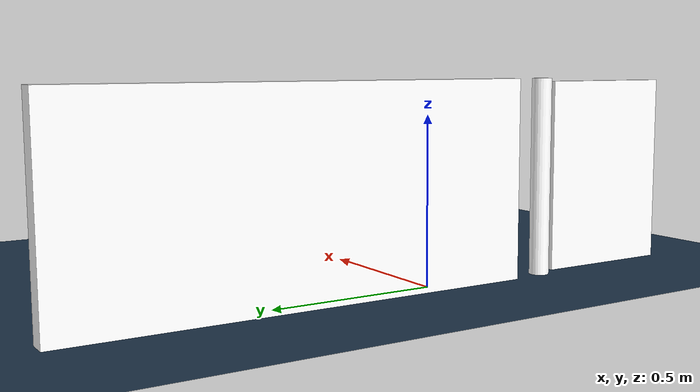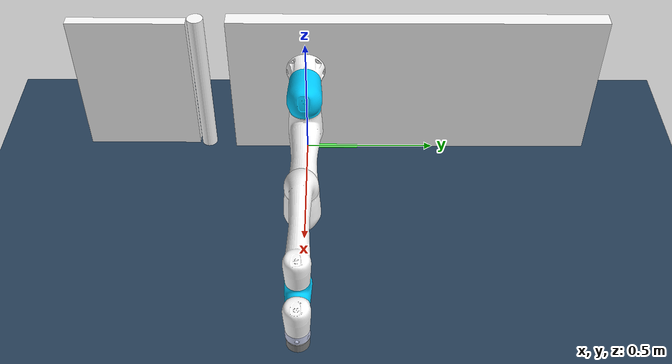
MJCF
<!--无约束门，只能关-->
<mujoco model="jk5">
    <compiler angle="radian" meshdir="../meshes/" coordinate="local"/>
    <size njmax="5000" nconmax="1000"/>
    <option timestep="2e-3" noslip_iterations="20">
        <flag contact="enable" warmstart="disable"/>
    </option>
    <visual>
        <map force="1" torque="10000"/>
        <rgba contactforce="1 0 0 1" contacttorque="0 1 0 1" contactfriction="0 0 1 1"/>
    </visual>
    <asset>
        <material name="common_mat" specular="0" shininess="0.5" reflectance="0" rgba="0.93 0.93 0.93 1"/>
        <material name='floor_mat' texture="floor_tex" shininess="0.8" texrepeat="10 10" specular="0.7"
                  reflectance="0.5"/>
        <material name="MatMetal" specular="1" shininess="0.3" rgba="0.9 0.9 0.9 1"/>
        <material name="MatDarkWood" texrepeat="3 3" specular="0.4" shininess="0.1"/>
        <material name="MatLightWood" texrepeat="3 3" specular="0.4" shininess="0.1"/>
        <texture type="skybox" builtin="gradient" rgb1="1 1 1" rgb2="1 1 1" width="512" height="512"/>
        <texture name="floor_tex" type="2d" builtin="checker" rgb1=".2 .3 .4" rgb2=".1 .2 .3" width="100" height="100"/>
        <hfield name="sin_floor" file="shape.png" nrow="0" ncol="0" size="0.25 0.2 0.02 0.01"/>
        <mesh name="base_link" file="base_link.STL"/>
        <mesh name="link1" file="link1.STL"/>
        <mesh name="link2" file="link2.STL"/>
        <mesh name="link3" file="link3.STL"/>
        <mesh name="link4" file="link4.STL"/>
        <mesh name="link5" file="link5.STL"/>
        <mesh name="link6" file="link6.STL"/>
    </asset>
    <worldbody>
        <light name="light" mode="targetbody" target="link1" directional="true" pos="1 1 3"/>
        <geom name='floor' material="floor_mat" pos='0 0 0' size='2.5 2.5 0.1' type='plane'/>
        <geom name="wall" material="MatLightWood" pos="-0.03 0.41 0.3" size=" 0.03 0.7 0.3" type="box"/>
        <!--0.3885用于平齐门把手,quat为 0 0 1,1 0 0, 0 1 0-->
        <body name="jk5" pos="0 0 0.3885" quat="0.5 0.5 0.5 0.5">
            <geom type="mesh" contype="0" conaffinity="0" group="1" rgba="1 1 1 1" mesh="base_link"/>
            <body name="link1" pos="0 0 0.069">
                <inertial pos="-3.8005e-05 -0.0024889 0.054452" quat="0.696512 0.0244353 -0.0262529 0.716648"
                          mass="4.27" diaginertia="0.0214324 0.0213196 0.00795099"/>
                <joint name="joint1" pos="0 0 0" axis="0 0 1" limited="true" range="-3.14 3.14"/>
                <geom type="mesh" contype="0" conaffinity="0" group="1" rgba="0 0.8 1 1" mesh="link1"/>
                <body name="link2" pos="0 0 0.073" quat="0.7071067811865475 0.7071067811865475 0 0">
                    <inertial pos="0 0.21252 0.12053" quat="0.414451 0.57284 0.573072 0.414334" mass="10.1"
                              diaginertia="1.01715 0.953511 0.0834946"/>
                    <joint name="joint2" pos="0 0 0" axis="0 0 1" limited="true" range="-3.14 3.14"/>
                    <geom type="mesh" contype="0" conaffinity="0" group="1" rgba="1 1 1 1" mesh="link2"/>
                    <body name="link3" pos="0 0.425 0" quat="0.7071067811865475 0 0 0.7071067811865475">
                        <inertial pos="0.27205 1.9634e-05 0.023591" quat="0.482588 0.516912 0.516005 0.483374"
                                  mass="2.61" diaginertia="0.262358 0.261811 0.0036704"/>
                        <joint name="joint3" pos="0 0 0" axis="0 0 1" limited="true" range="-3.14 3.14"/>
                        <geom type="mesh" contype="0" conaffinity="0" group="1" rgba="1 1 1 1" mesh="link3"/>
                        <body name="link4" pos="0.395 0 0">
                            <inertial pos="3.0707e-05 -0.015152 0.11185"
                                      quat="0.997531 0.0701668 0.000322345 -0.00295604" mass="1.45"
                                      diaginertia="0.0201018 0.0196889 0.00158379"/>
                            <joint name="joint4" pos="0 0 0" axis="0 0 1" limited="true" range="-3.14 3.14"/>
                            <geom type="mesh" contype="0" conaffinity="0" group="1" rgba="0 0.8 1 1" mesh="link4"/>
                            <body name="link5" pos="0 0 0.1135" quat="0.5 -0.5 0.5 -0.5">
                                <inertial pos="-3.0707e-05 0.015152 0.099848"
                                          quat="0.704002 -0.0654372 0.0666836 0.704026" mass="1.45"
                                          diaginertia="0.0057004 0.0057004 0.0057004"/>
                                <joint name="joint5" pos="0 0 0" axis="0 0 1" limited="true" range="-3.14 3.14"/>
                                <geom type="mesh" contype="0" conaffinity="0" group="1" rgba="1 1 1 1" mesh="link5"/>
                                <body name="link6" pos="0 0 0.1015" quat="0.7071067811865475 0.7071067811865475 0 0">
                                    <inertial pos="0 0.00058691 0.072051" quat="0.999992 -0.00407703 0 0" mass="0.21"
                                              diaginertia="0.00128044 0.00120857 0.000194485"/>
                                    <joint name="joint6" pos="0 0 0" axis="0 0 1" limited="true" range="-3.14 3.14"/>
                                    <geom type="mesh" contype="0" conaffinity="0" group="1"
                                          rgba="0.79216 0.81961 0.93333 1" mesh="link6"/>
                                    <!--stick与tip为末端执行器，长度为0.063,因此tip有一个0.063,stick有两个0.0315-->
                                    <body name="ee_link" pos="0 0 0.094">
                                        <inertial pos="0 0 0.015" mass="0.424"
                                                  diaginertia="0.00019875 0.00019875 0.00019080"/>
                                        <geom name="ft_sensor" type="cylinder" fromto="0 0 0  0 0 0.034" size="0.0375"/>
                                        <geom name="stick" type="cylinder" pos="0 0 0.0315" size="0.01 0.0315"/>
                                        <!--机器人末端-->
                                        <site name="ee" pos="0 0 0.063" rgba="1 0 0 0" size="0.01 0.01 0.01"
                                              type="sphere"/>
                                        <!--ee_link与link6，力传感器的力-->
                                        <site name="nft_sensor" pos="0 0 0" rgba="1 0 0 0" size="0.01 0.01 0.01"
                                              type="sphere"/>
                                        <!--tip与ee_link，接触点的力，专门定义dummy_body-->
                                        <body name="dummy_body" pos="0 0 0.063">
                                            <site name="contact_sensor" pos="0 0 0" rgba="1 0 0 0" size="0.01 0.01 0.01"
                                                  type="sphere"/>
                                            <inertial pos="0 0 0" mass="0.0" diaginertia="0 0 0"/>
                                            <geom type="sphere" pos="0 0 0" group="1" size="0.01 0.01 0.01"/>
                                        </body>
                                    </body>
                                </body>
                            </body>
                        </body>
                    </body>
                </body>
            </body>
        </body>
        <!-- -0.335时为原点 -->
        <body name="door" pos="-0.03 -0.735 0.3" quat="0 0 0 1">
            <body name="frame" pos="0 0.22 0" quat="0.7071067811865475 0 0 -0.7071067811865475">
                <inertial pos="0.3 0 0" quat="0.5 0.5 0.5 0.5" mass="7.85398" diaginertia="0.923301 0.764585 0.168533"/>
                <!-- 两根柱子 -->
                <geom size="0.03 0.3" pos="0.555 0 0" type="cylinder" rgba="1 1 1 1" group="1" name="r_frame"/>
                <body name="door_board" pos="0.3 0 0">
                    <inertial pos="0.0296816 -0.00152345 0" quat="0.701072 0 0 0.713091" mass="2.43455"
                              diaginertia="0.0913751 0.0521615 0.043714"/>
                    <joint name="hinge" pos="0.255 0 0" axis="0 0 1" range="0.0 1.5707" damping="1" frictionloss="1"
                           limited="true"/>
                    <geom size="0.22 0.02 .29" type="box" friction="1 1 1" group="1" name="panel" material="MatDarkWood"
                          condim="4"/>
                    <!--&lt;!&ndash;                      &lt;!&ndash; Don't render the door handle site by default &ndash;&gt;&ndash;&gt;-->
                </body>
            </body>
        </body>
        <!-- equality测试代码 -->
        <site name="w_x" pos="0.1 0 0" rgba="1 0 0 1" size="0.01 0.1" type="cylinder" quat="1 0 1 0"/>
        <site name="w_y" pos="0 0.1 0" rgba="0 1 0 1" size="0.01 0.1" type="cylinder" quat="0 0 1 1"/>
        <site name="w_z" pos="0 0 0.1" rgba="0 0 1 1" size="0.01 0.1" type="cylinder" quat="0 0 1 0"/>
    </worldbody>
    <equality>
        <connect name="robot2door" active="false" body1="dummy_body" body2="door_board" anchor="0.01 0 0"
                 solref="2e-3 1"/>
    </equality>
    <actuator>
        <motor name='motor1' ctrllimited="false" ctrlrange="-100 100" joint='joint1' gear="1"/>
        <motor name='motor2' ctrllimited="false" ctrlrange="-100 100" joint='joint2' gear="1"/>
        <motor name='motor3' ctrllimited="false" ctrlrange="-100 100" joint='joint3' gear="1"/>
        <motor name='motor4' ctrllimited="false" ctrlrange="-100 100" joint='joint4' gear="1"/>
        <motor name='motor5' ctrllimited="false" ctrlrange="-100 100" joint='joint5' gear="1"/>
        <motor name='motor6' ctrllimited="false" ctrlrange="-100 100" joint='joint6' gear="1"/>
    </actuator>
    <sensor>
        <!--检测接触点的力与力矩-->
        <force name="contact_force" site="contact_sensor"/>
        <torque name="contact_torque" site="contact_sensor"/>
        <touch name="contact_touch" site="contact_sensor"/>
        <!--检测nft传感器的力与力矩-->
        <force name="nft_force" site="nft_sensor"/>
        <torque name="nft_torque" site="nft_sensor"/>
    </sensor>
</mujoco>
